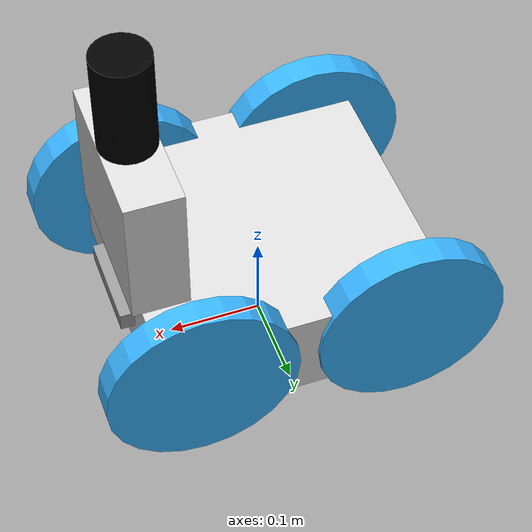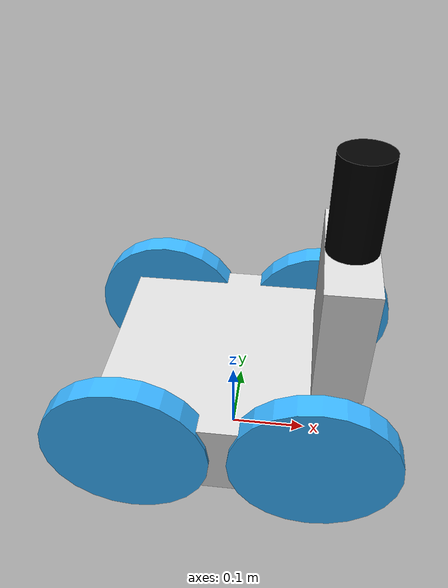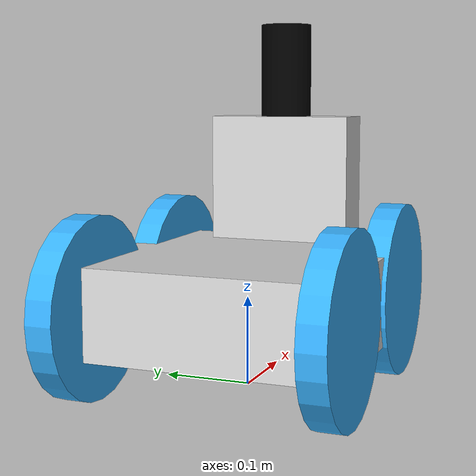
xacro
<?xml version='1.0'?>
<robot name="skid_clover" xmlns:xacro="http://www.ros.org/wiki/xacro">

<!-- Import all Gazebo-customization elements, including Gazebo colors -->
  <xacro:include filename="$(find clover_odometry)/urdf/skid_clover.gazebo" />

  <xacro:property name="wheel_kp" value="1000000.0" />
  <xacro:property name="wheel_kd" value="100.0" />
  <xacro:property name="wheel_mu1" value="1" />
  <xacro:property name="wheel_mu2" value="1" />
  <xacro:property name="wheel_slip1" value="0.5" />
  <xacro:property name="wheel_slip2" value="0" />

  <link name="robot_footprint">
  </link>

  <joint name="robot_footprint_joint" type="fixed">
    <origin xyz="0 0 0.10" rpy="0 0 0" />
    <parent link="robot_footprint" />
    <child link="base_link" />
  </joint>

  <!-- Base Link -->
  <link name="base_link">
    <visual>
      <origin xyz="0 0 0" rpy="0 0 0" />
      <geometry>
          <box size="0.3 0.3 0.1"/>
      </geometry>
      <material name="lightgrey">
	<color rgba="217 217 217 0.7"/>
      </material>
    </visual>
    <!-- Base collision -->
    <collision>
      <origin xyz="0 0 0" rpy="0 0 0" />
      <geometry>
          <box size="0.3 0.3 0.1"/>
      </geometry>
    </collision>
    <!-- Mass and Inertia -->
    <inertial>
	<mass value='5'/>
	<inertia ixx="0.13" ixy="0.0" ixz="0.0"
		 iyy="0.21" iyz="0.0" izz="0.13"/>
    </inertial>

  </link>

  <!-- Right Front Wheel -->
  <link name="right_front_wheel">
    <visual>
      <origin xyz="0 0 0" rpy="1.570795 0 0" />
      <geometry>
          <cylinder length="0.03" radius="0.10" />
      </geometry>
      <material name="blue">
	<color rgba="0.22 0.7 1 1"/>
      </material>
    </visual>
  <!-- Right Front Wheel collision -->
  <collision>
      <origin xyz="0 0 0" rpy="1.570795 0 0" />
      <geometry>
          <cylinder length="0.03" radius="0.10" />
      </geometry>
      <surface>
        <friction>
          <fdir1>1 0 0</fdir1>
          <kp>${wheel_kp}</kp> <!-- kp and kd for rubber -->
          <kd>${wheel_kd}</kd>
          <mu>${wheel_mu1}</mu>
          <mu2>${wheel_mu2}</mu2>
          <slip1>${wheel_slip1}</slip1>
          <slip2>${wheel_slip2}</slip2>
        </friction>
      </surface>
    </collision>
  <!-- Mass and Inertia -->
  <inertial>
	<mass value='0.5'/>
	<inertia ixx="0.00155" ixy="0.0" ixz="0.0"
		 iyy="0.00155" iyz="0.0" izz="0.003"/>
  </inertial>
  </link>

  <joint name="front_right_wheel_joint" type="continuous">
    <parent link="base_link"/>
    <child link="right_front_wheel"/>
    <origin xyz="0.11 -0.14 0" rpy="0 0 0" />
    <axis xyz="0 1 0" />
    <limit effort="10000" velocity="1000"/>
    <joint_properties damping="1.0" friction="1.0"/>
  </joint>

<transmission name="right_side_transmission">
	<type>transmission_interface/SimpleTransmittion</type>
	<joint name="front_right_wheel_joint">
	  <hardwareInterface>hardware_interface/EffortJointInterface</hardwareInterface>
	</joint>
	<actuator name="right_motor">
	  <hardwareInterface>hardware_interface/EffortJointInterface</hardwareInterface>
	</actuator>
</transmission>

  <!-- Left Front Wheel -->
  <link name="left_front_wheel">
    <visual>
      <origin xyz="0 0 0" rpy="1.570795 0 0" />
      <geometry>
          <cylinder length="0.03" radius="0.10" />
      </geometry>
      <material name="blue"/>
    </visual>
  <!-- Left Front Wheel collision -->
  <collision>
      <origin xyz="0 0 0" rpy="1.570795 0 0" />
      <geometry>
          <cylinder length="0.03" radius="0.10" />
      </geometry>
      <surface>
        <friction>
          <fdir1>1 0 0</fdir1>
          <kp>${wheel_kp}</kp> <!-- kp and kd for rubber -->
          <kd>${wheel_kd}</kd>
          <mu>${wheel_mu1}</mu>
          <mu2>${wheel_mu2}</mu2>
          <slip1>${wheel_slip1}</slip1>
          <slip2>${wheel_slip2}</slip2>
        </friction>
      </surface>
    </collision>
  <!-- Mass and Inertia -->
  <inertial>
	<mass value='0.5'/>
	<inertia ixx="0.00155" ixy="0.0" ixz="0.0"
		 iyy="0.00155" iyz="0.0" izz="0.003"/>
  </inertial>
  </link>

  <joint name="front_left_wheel_joint" type="continuous">
    <parent link="base_link"/>
    <child link="left_front_wheel"/>
    <origin xyz="0.11 0.14 0" rpy="0 0 0" />
    <axis xyz="0 1 0" />
    <limit effort="10000" velocity="1000"/>
    <joint_properties damping="1.0" friction="1.0"/>
  </joint>

<transmission name="leftmotortransm">
	<type>transmission_interface/SimpleTransmittion</type>
	<joint name="front_left_wheel_joint">
	  <hardwareInterface>hardware_interface/EffortJointInterface</hardwareInterface>
	</joint>
	<actuator name="left_motor">
	  <hardwareInterface>hardware_interface/EffortJointInterface</hardwareInterface>
	</actuator>
</transmission>

<!-- Right Rear Wheel -->
  <link name="right_rear_wheel">
    <visual>
      <origin xyz="0 0 0" rpy="1.570795 0 0" />
      <geometry>
          <cylinder length="0.03" radius="0.10" />
      </geometry>
      <material name="blue"/>
    </visual>
  <!-- Right Rear Wheel collision -->
  <collision>
      <origin xyz="0 0 0" rpy="1.570795 0 0" />
      <geometry>
          <cylinder length="0.03" radius="0.10" />
      </geometry>
      <surface>
        <friction>
          <fdir1>1 0 0</fdir1>
          <kp>${wheel_kp}</kp> <!-- kp and kd for rubber -->
          <kd>${wheel_kd}</kd>
          <mu>${wheel_mu1}</mu>
          <mu2>${wheel_mu2}</mu2>
          <slip1>${wheel_slip1}</slip1>
          <slip2>${wheel_slip2}</slip2>
        </friction>
      </surface>
    </collision>
  <!-- Mass and Inertia -->
  <inertial>
	<mass value='0.5'/>
	<inertia ixx="0.00155" ixy="0.0" ixz="0.0"
		 iyy="0.00155" iyz="0.0" izz="0.003"/>
  </inertial>
  </link>

  <joint name="back_right_wheel_joint" type="continuous">
    <parent link="base_link"/>
    <child link="right_rear_wheel"/>
    <origin xyz="-0.11 -0.14 0" rpy="0 0 0" />
    <axis xyz="0 1 0" />
    <limit effort="10000" velocity="1000"/>
    <joint_properties damping="1.0" friction="1.0"/>
  </joint>

  <!-- Left Rear Wheel -->
  <link name="left_rear_wheel">
    <visual>
      <origin xyz="0 0 0" rpy="1.570795 0 0" />
      <geometry>
          <cylinder length="0.03" radius="0.10" />
      </geometry>
      <material name="blue"/>
    </visual>
  <!-- Left Rear Wheel collision -->
  <collision>
      <origin xyz="0 0 0" rpy="1.570795 0 0" />
      <geometry>
          <cylinder length="0.03" radius="0.10" />
      </geometry>
      <surface>
        <friction>
          <fdir1>1 0 0</fdir1>
          <kp>${wheel_kp}</kp> <!-- kp and kd for rubber -->
          <kd>${wheel_kd}</kd>
          <mu>${wheel_mu1}</mu>
          <mu2>${wheel_mu2}</mu2>
          <slip1>${wheel_slip1}</slip1>
          <slip2>${wheel_slip2}</slip2>
        </friction>
      </surface>
    </collision>
  <!-- Mass and Inertia -->
  <inertial>
	<mass value='0.5'/>
	<inertia ixx="0.00155" ixy="0.0" ixz="0.0"
		 iyy="0.00155" iyz="0.0" izz="0.003"/>
  </inertial>

  </link>

  <joint name="back_left_wheel_joint" type="continuous">
    <parent link="base_link"/>
    <child link="left_rear_wheel"/>
    <origin xyz="-0.11 0.14 0" rpy="0 0 0" />
    <axis xyz="0 1 0" />
    <limit effort="10000" velocity="1000"/>
    <joint_properties damping="1.0" friction="1.0"/>
  </joint>

<!-- LIDAR module base -->
  <link name="LIDAR_module_base">
    <visual>
      <origin xyz="0 0 0.125" rpy="0 0 0" />
      <geometry>
          <box size="0.06 0.17 0.15"/>
      </geometry>
      <material name="lightgrey"/>
    </visual>
  <!-- LIDAR module base collision-->
  <collision>
      <origin xyz="0 0 0.125" rpy="0 0 0" />
      <geometry>
          <box size="0.06 0.17 0.15"/>
      </geometry>
    </collision>
  <!-- Mass and Inertia -->
    <inertial>
	<mass value='0.1'/>
	<inertia ixx="0.1" ixy="0.0" ixz="0.0"
		 iyy="0.1" iyz="0.0" izz="0.1"/>
    </inertial>
  </link>

  <joint name="LIDAR_module_base" type="fixed">
    <parent link="base_link"/>
    <child link="LIDAR_module_base"/>
    <origin xyz="0.13 0 0" rpy="0 0 0" />
  </joint>

  <!-- LIDAR module -->
  <link name="hokuyo">
    <visual>
      <origin xyz="0 0 0.055" rpy="0 0 0" />
      <geometry>
          <cylinder length="0.11" radius="0.03" />
      </geometry>
      <material name="black">
	<color rgba="0 0 0 1"/>
      </material>
    </visual>
  <!-- Mass and Inertia -->
    <inertial>
	<mass value='0.4'/>
	<inertia ixx="0.001" ixy="0.0" ixz="0.0"
		 iyy="0.001" iyz="0.0" izz="0.001"/>
    </inertial>

  </link>

  <joint name="hokuyo_joint" type="fixed">
    <parent link="LIDAR_module_base"/>
    <child link="hokuyo"/>
    <origin xyz="0 0 0.2" rpy="0 0 0" />
    <axis xyz="0 0 1" />
    <limit effort="10000" velocity="1000"/>
    <joint_properties damping="1.0" friction="1.0"/>
  </joint>

<!-- camera -->
<link name='camera'>
    <inertial>
      <mass value="0.1"/>
      <origin xyz="0 0 0" rpy=" 0 0 0"/>
      <inertia
          ixx="1e-6" ixy="0" ixz="0"
          iyy="1e-6" iyz="0"
          izz="1e-6"/>
    </inertial>
    <collision name='camera_collision'>
      <origin xyz="0 0 0" rpy=" 0 0 0"/>
      <geometry>
        <box size="0.03 0.1 0.02"/>
      </geometry>
    </collision>
    <visual name='camera_visual'>
      <origin xyz="0 0 0" rpy=" 0 0 0"/>
      <geometry>
        <box size="0.03 0.1 0.02"/>
      </geometry>
    </visual>
  </link>

  <joint type="fixed" name="camera_joint">
    <origin xyz="0.15 0 0" rpy="0 0 0"/>
    <child link="camera"/>
    <parent link="base_link"/>
    <axis xyz="0 1 0" rpy="0 0 0"/>
    <limit effort="10000" velocity="1000"/>
    <joint_properties damping="1.0" friction="1.0"/>
  </joint>

<!-- hokuyo -->

  <gazebo reference="camera">
    <material>Gazebo/Grey</material>
    <sensor type="camera" name="camera1">
      <update_rate>30.0</update_rate>
      <camera name="head">
        <horizontal_fov>1.3962634</horizontal_fov>
        <image>
          <width>800</width>
          <height>800</height>
          <format>R8G8B8</format>
        </image>
        <clip>
          <near>0.02</near>
          <far>300</far>
        </clip>
      </camera>
      <plugin name="camera_controller" filename="libgazebo_ros_camera.so">
        <alwaysOn>true</alwaysOn>
        <updateRate>0.0</updateRate>
        <cameraName>skid_clover/camera1</cameraName>
        <imageTopicName>image_raw</imageTopicName>
        <cameraInfoTopicName>camera_info</cameraInfoTopicName>
        <frameName>camera</frameName>
        <hackBaseline>0.07</hackBaseline>
        <distortionK1>0.0</distortionK1>
        <distortionK2>0.0</distortionK2>
        <distortionK3>0.0</distortionK3>
        <distortionT1>0.0</distortionT1>
        <distortionT2>0.0</distortionT2>
      </plugin>
    </sensor>
  </gazebo>

  <gazebo>
    <plugin name="gazebo_ros_control" filename="libgazebo_ros_control.so">
    </plugin>
  </gazebo>

<!-- Plugins -->

<!-- Control drive plugin -->
<gazebo>
  <plugin name="skid_steer_drive_controller" filename="libgazebo_ros_skid_steer_drive.so">
    <updateRate>100</updateRate>
    <robotNamespace>/</robotNamespace>
    <leftFrontJoint>front_left_wheel_joint</leftFrontJoint>
    <rightFrontJoint>front_right_wheel_joint</rightFrontJoint>
    <leftRearJoint>back_left_wheel_joint</leftRearJoint>
    <rightRearJoint>back_right_wheel_joint</rightRearJoint>
    <wheelSeparation>0.3</wheelSeparation>
    <wheelDiameter>0.11</wheelDiameter>
    <robotBaseFrame>robot_footprint</robotBaseFrame>
    <torque>40</torque>
    <commandTopic>cmd_vel</commandTopic>
    <odometryTopic>odom</odometryTopic>
    <odometryFrame>odom</odometryFrame>
    <broadcastTF>true</broadcastTF>
    <covariance_x>0.001</covariance_x>
    <covariance_y>0.001</covariance_y>
    <covariance_yaw>0.01</covariance_yaw>
  </plugin>
</gazebo>

</robot>
